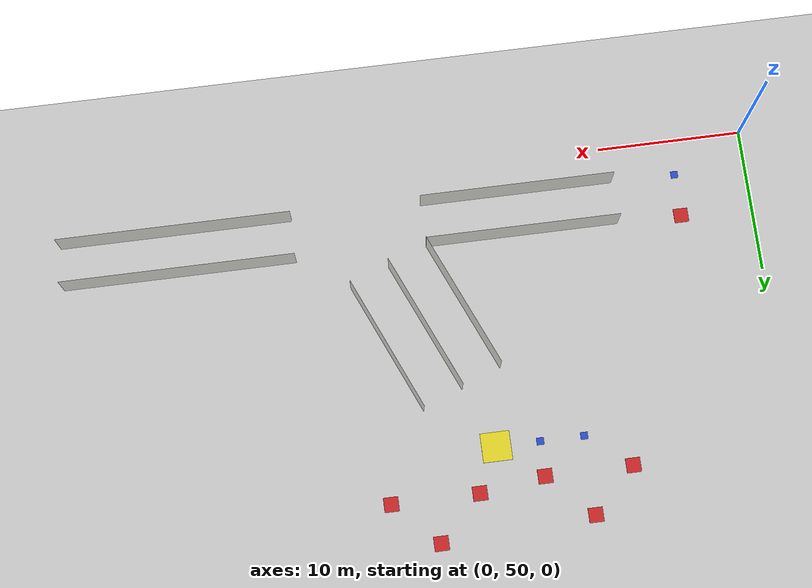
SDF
<sdf version="1.6">
 <world name="default">
  <model name="ground_plane">
   <static>1</static>
   <link name="link">
    <collision name="collision">
     <geometry><plane><normal>0 0 1</normal><size>100 100</size></plane></geometry>
     <surface><friction><ode><mu>100</mu><mu2>50</mu2></ode></friction></surface>
    </collision>
    <visual name="visual">
     <cast_shadows>0</cast_shadows>
     <geometry><plane><normal>0 0 1</normal><size>100 100</size></plane></geometry>
     <material>
      <script><uri>file://media/materials/scripts/gazebo.material</uri><name>Gazebo/Grey</name></script>
     </material>
    </visual>
   </link>
  </model>
  <model name="352">
   <pose>20.9647 60.0749 0 0 -0 0</pose>
   <link name="Wall_8">
    <collision name="Wall_8_Collision">
     <geometry><box><size>10.0198 0.001 2.5</size></box></geometry>
     <pose>0 0 1.25 0 -0 0</pose>
    </collision>
    <visual name="Wall_8_Visual">
     <pose>0 0 1.25 0 -0 0</pose>
     <geometry><box><size>10.0198 0.001 2.5</size></box></geometry>
     <material>
      <script><uri>file://media/materials/scripts/gazebo.material</uri><name>Gazebo/CeilingTiled</name></script>
      <ambient>0.435294 0.796078 0.67451 1</ambient>
     </material>
    </visual>
    <pose>0 -2e-06 0 0 -0 1.9733</pose>
   </link>
   <static>1</static>
  </model>
  <model name="352_clone">
   <pose>23.725 61.25 0 0 -0 0</pose>
   <link name="Wall_8">
    <collision name="Wall_8_Collision">
     <geometry><box><size>10.0198 0.001 2.5</size></box></geometry>
     <pose>0 0 1.25 0 -0 0</pose>
    </collision>
    <visual name="Wall_8_Visual">
     <pose>0 0 1.25 0 -0 0</pose>
     <geometry><box><size>10.0198 0.001 2.5</size></box></geometry>
     <material>
      <script><uri>file://media/materials/scripts/gazebo.material</uri><name>Gazebo/CeilingTiled</name></script>
      <ambient>0.435294 0.796078 0.67451 1</ambient>
     </material>
    </visual>
    <pose>0 -2e-06 0 0 -0 1.9733</pose>
   </link>
   <static>1</static>
  </model>
  <model name="352_clone_clone">
   <pose>26.4853 62.4251 0 0 -0 0</pose>
   <link name="Wall_8">
    <collision name="Wall_8_Collision">
     <geometry><box><size>10.0198 0.001 2.5</size></box></geometry>
     <pose>0 0 1.25 0 -0 0</pose>
    </collision>
    <visual name="Wall_8_Visual">
     <pose>0 0 1.25 0 -0 0</pose>
     <geometry><box><size>10.0198 0.001 2.5</size></box></geometry>
     <material>
      <script><uri>file://media/materials/scripts/gazebo.material</uri><name>Gazebo/CeilingTiled</name></script>
      <ambient>0.435294 0.796078 0.67451 1</ambient>
     </material>
    </visual>
    <pose>0 -2e-06 0 0 -0 1.9733</pose>
   </link>
   <static>1</static>
  </model>
  <model name="353">
   <pose>16.225 52.5 0 0 -0 0</pose>
   <link name="Wall_10">
    <collision name="Wall_10_Collision">
     <geometry><box><size>13.45 0.001 2.5</size></box></geometry>
     <pose>0 0 1.25 0 -0 0</pose>
    </collision>
    <visual name="Wall_10_Visual">
     <pose>0 0 1.25 0 -0 0</pose>
     <geometry><box><size>13.45 0.001 2.5</size></box></geometry>
     <material>
      <script><uri>file://media/materials/scripts/gazebo.material</uri><name>Gazebo/CeilingTiled</name></script>
      <ambient>0.435294 0.796078 0.67451 1</ambient>
     </material>
    </visual>
    <pose>0 0 0 0 -0 3.14159</pose>
   </link>
   <static>1</static>
  </model>
  <model name="359">
   <pose>40 52.5 0 0 -0 0</pose>
   <link name="Wall_20">
    <collision name="Wall_20_Collision">
     <geometry><box><size>16.1 0.001 2.5</size></box></geometry>
     <pose>0 0 1.25 0 -0 0</pose>
    </collision>
    <visual name="Wall_20_Visual">
     <pose>0 0 1.25 0 -0 0</pose>
     <geometry><box><size>16.1 0.001 2.5</size></box></geometry>
     <material>
      <script><uri>file://media/materials/scripts/gazebo.material</uri><name>Gazebo/CeilingTiled</name></script>
      <ambient>0.435294 0.796078 0.67451 1</ambient>
     </material>
    </visual>
   </link>
   <static>1</static>
  </model>
  <model name="359_clone">
   <pose>40 55.5 0 0 -0 0</pose>
   <link name="Wall_20">
    <collision name="Wall_20_Collision">
     <geometry><box><size>16.1 0.001 2.5</size></box></geometry>
     <pose>0 0 1.25 0 -0 0</pose>
    </collision>
    <visual name="Wall_20_Visual">
     <pose>0 0 1.25 0 -0 0</pose>
     <geometry><box><size>16.1 0.001 2.5</size></box></geometry>
     <material>
      <script><uri>file://media/materials/scripts/gazebo.material</uri><name>Gazebo/CeilingTiled</name></script>
      <ambient>0.435294 0.796078 0.67451 1</ambient>
     </material>
    </visual>
   </link>
   <static>1</static>
  </model>
  <model name="353_clone_clone">
   <pose>16.225 55.5 0 0 -0 0</pose>
   <link name="Wall_10">
    <collision name="Wall_10_Collision">
     <geometry><box><size>13.45 0.001 2.5</size></box></geometry>
     <pose>0 0 1.25 0 -0 0</pose>
    </collision>
    <visual name="Wall_10_Visual">
     <pose>0 0 1.25 0 -0 0</pose>
     <geometry><box><size>13.45 0.001 2.5</size></box></geometry>
     <material>
      <script><uri>file://media/materials/scripts/gazebo.material</uri><name>Gazebo/CeilingTiled</name></script>
      <ambient>0.435294 0.796078 0.67451 1</ambient>
     </material>
    </visual>
    <pose>0 0 0 0 -0 3.14159</pose>
   </link>
   <static>1</static>
  </model>
  <model name="my_objectT1">
   <link name="my_box">
    <inertial>
     <mass>1</mass>
     <inertia><ixx>1</ixx><ixy>0</ixy><ixz>0</ixz><iyy>100</iyy><iyz>0</iyz><izz>1</izz></inertia>
    </inertial>
    <collision name="my_box_collision"><geometry><box><size>2 2 0.01</size></box></geometry></collision>
    <visual name="my_box_visual">
     <geometry><box><size>2 2 0.01</size></box></geometry>
     <material>
      <script><name>Gazebo/Yellow</name><uri>file://media/materials/scripts/gazebo.material</uri></script>
     </material>
    </visual>
   </link>
   <pose>20.0004 69.999 0.114767 1e-06 2e-06 -0.000843</pose>
  </model>
  <model name="my_objecteg1w2">
   <link name="my_box">
    <inertial>
     <mass>1</mass>
     <inertia><ixx>1</ixx><ixy>0</ixy><ixz>0</ixz><iyy>100</iyy><iyz>0</iyz><izz>1</izz></inertia>
    </inertial>
    <collision name="my_box_collision"><geometry><box><size>1 1 0.01</size></box></geometry></collision>
    <visual name="my_box_visual">
     <geometry><box><size>1 1 0.01</size></box></geometry>
     <material>
      <script><name>Gazebo/Red</name><uri>file://media/materials/scripts/gazebo.material</uri></script>
     </material>
    </visual>
   </link>
   <pose>5 55.5 0.104995 0 -0 0</pose>
  </model>
  <model name="my_objecteg5w1">
   <link name="my_box">
    <inertial>
     <mass>1</mass>
     <inertia><ixx>1</ixx><ixy>0</ixy><ixz>0</ixz><iyy>100</iyy><iyz>0</iyz><izz>1</izz></inertia>
    </inertial>
    <collision name="my_box_collision"><geometry><box><size>1 1 0.01</size></box></geometry></collision>
    <visual name="my_box_visual">
     <geometry><box><size>1 1 0.01</size></box></geometry>
     <material>
      <script><name>Gazebo/Red</name><uri>file://media/materials/scripts/gazebo.material</uri></script>
     </material>
    </visual>
   </link>
   <pose>11 72.4 0.104995 0 -0 0</pose>
  </model>
  <model name="my_objecteg5w2">
   <link name="my_box">
    <inertial>
     <mass>1</mass>
     <inertia><ixx>1</ixx><ixy>0</ixy><ixz>0</ixz><iyy>100</iyy><iyz>0</iyz><izz>1</izz></inertia>
    </inertial>
    <collision name="my_box_collision"><geometry><box><size>1 1 0.01</size></box></geometry></collision>
    <visual name="my_box_visual">
     <geometry><box><size>1 1 0.01</size></box></geometry>
     <material>
      <script><name>Gazebo/Red</name><uri>file://media/materials/scripts/gazebo.material</uri></script>
     </material>
    </visual>
   </link>
   <pose>14 75.4 0.104995 0 -0 0</pose>
  </model>
  <model name="my_objecteg5w3">
   <link name="my_box">
    <inertial>
     <mass>1</mass>
     <inertia><ixx>1</ixx><ixy>0</ixy><ixz>0</ixz><iyy>100</iyy><iyz>0</iyz><izz>1</izz></inertia>
    </inertial>
    <collision name="my_box_collision"><geometry><box><size>1 1 0.01</size></box></geometry></collision>
    <visual name="my_box_visual">
     <geometry><box><size>1 1 0.01</size></box></geometry>
     <material>
      <script><name>Gazebo/Red</name><uri>file://media/materials/scripts/gazebo.material</uri></script>
     </material>
    </visual>
   </link>
   <pose>17 72.4 0.104995 0 -0 0</pose>
  </model>
  <model name="my_objecteg6w1">
   <link name="my_box">
    <inertial>
     <mass>1</mass>
     <inertia><ixx>1</ixx><ixy>0</ixy><ixz>0</ixz><iyy>100</iyy><iyz>0</iyz><izz>1</izz></inertia>
    </inertial>
    <collision name="my_box_collision"><geometry><box><size>1 1 0.01</size></box></geometry></collision>
    <visual name="my_box_visual">
     <geometry><box><size>1 1 0.01</size></box></geometry>
     <material>
      <script><name>Gazebo/Red</name><uri>file://media/materials/scripts/gazebo.material</uri></script>
     </material>
    </visual>
   </link>
   <pose>21.5 73 0.104995 0 -0 0</pose>
  </model>
  <model name="my_objecteg6w2">
   <link name="my_box">
    <inertial>
     <mass>1</mass>
     <inertia><ixx>1</ixx><ixy>0</ixy><ixz>0</ixz><iyy>100</iyy><iyz>0</iyz><izz>1</izz></inertia>
    </inertial>
    <collision name="my_box_collision"><geometry><box><size>1 1 0.01</size></box></geometry></collision>
    <visual name="my_box_visual">
     <geometry><box><size>1 1 0.01</size></box></geometry>
     <material>
      <script><name>Gazebo/Red</name><uri>file://media/materials/scripts/gazebo.material</uri></script>
     </material>
    </visual>
   </link>
   <pose>24.5 76 0.104995 0 -0 0</pose>
  </model>
  <model name="my_objecteg6w3">
   <link name="my_box">
    <inertial>
     <mass>1</mass>
     <inertia><ixx>1</ixx><ixy>0</ixy><ixz>0</ixz><iyy>100</iyy><iyz>0</iyz><izz>1</izz></inertia>
    </inertial>
    <collision name="my_box_collision"><geometry><box><size>1 1 0.01</size></box></geometry></collision>
    <visual name="my_box_visual">
     <geometry><box><size>1 1 0.01</size></box></geometry>
     <material>
      <script><name>Gazebo/Red</name><uri>file://media/materials/scripts/gazebo.material</uri></script>
     </material>
    </visual>
   </link>
   <pose>27.5 73 0.104995 0 -0 0</pose>
  </model>
  <model name="my_objectg3w1">
   <link name="my_box">
    <inertial>
     <mass>1</mass>
     <inertia><ixx>1</ixx><ixy>0</ixy><ixz>0</ixz><iyy>100</iyy><iyz>0</iyz><izz>1</izz></inertia>
    </inertial>
    <collision name="my_box_collision"><geometry><box><size>0.5 0.5 0.01</size></box></geometry></collision>
    <visual name="my_box_visual">
     <geometry><box><size>0.5 0.5 0.01</size></box></geometry>
     <material>
      <script><name>Gazebo/Blue</name><uri>file://media/materials/scripts/gazebo.material</uri></script>
     </material>
    </visual>
   </link>
   <pose>19.9956 70.0065 0.104766 1e-06 2e-06 0.000207</pose>
  </model>
  <model name="my_objectg3w2">
   <link name="my_box">
    <inertial>
     <mass>1</mass>
     <inertia><ixx>1</ixx><ixy>0</ixy><ixz>0</ixz><iyy>100</iyy><iyz>0</iyz><izz>1</izz></inertia>
    </inertial>
    <collision name="my_box_collision"><geometry><box><size>0.5 0.5 0.01</size></box></geometry></collision>
    <visual name="my_box_visual">
     <geometry><box><size>0.5 0.5 0.01</size></box></geometry>
     <material>
      <script><name>Gazebo/Blue</name><uri>file://media/materials/scripts/gazebo.material</uri></script>
     </material>
    </visual>
   </link>
   <pose>16.9954 70.007 0.104992 2e-06 2e-06 -0.000521</pose>
  </model>
  <model name="my_objectg3w3">
   <link name="my_box">
    <inertial>
     <mass>1</mass>
     <inertia><ixx>1</ixx><ixy>0</ixy><ixz>0</ixz><iyy>100</iyy><iyz>0</iyz><izz>1</izz></inertia>
    </inertial>
    <collision name="my_box_collision"><geometry><box><size>0.5 0.5 0.01</size></box></geometry></collision>
    <visual name="my_box_visual">
     <geometry><box><size>0.5 0.5 0.01</size></box></geometry>
     <material>
      <script><name>Gazebo/Blue</name><uri>file://media/materials/scripts/gazebo.material</uri></script>
     </material>
    </visual>
   </link>
   <pose>13.9953 70.0072 0.104991 2e-06 1e-06 -0.000125</pose>
  </model>
  <model name="my_objectg4w1">
   <link name="my_box">
    <inertial>
     <mass>1</mass>
     <inertia><ixx>1</ixx><ixy>0</ixy><ixz>0</ixz><iyy>100</iyy><iyz>0</iyz><izz>1</izz></inertia>
    </inertial>
    <collision name="my_box_collision"><geometry><box><size>0.5 0.5 0.01</size></box></geometry></collision>
    <visual name="my_box_visual">
     <geometry><box><size>0.5 0.5 0.01</size></box></geometry>
     <material>
      <script><name>Gazebo/Blue</name><uri>file://media/materials/scripts/gazebo.material</uri></script>
     </material>
    </visual>
   </link>
   <pose>4.99464 52.5095 0.104998 0 9e-06 -0.000342</pose>
  </model>
 </world>
</sdf>
